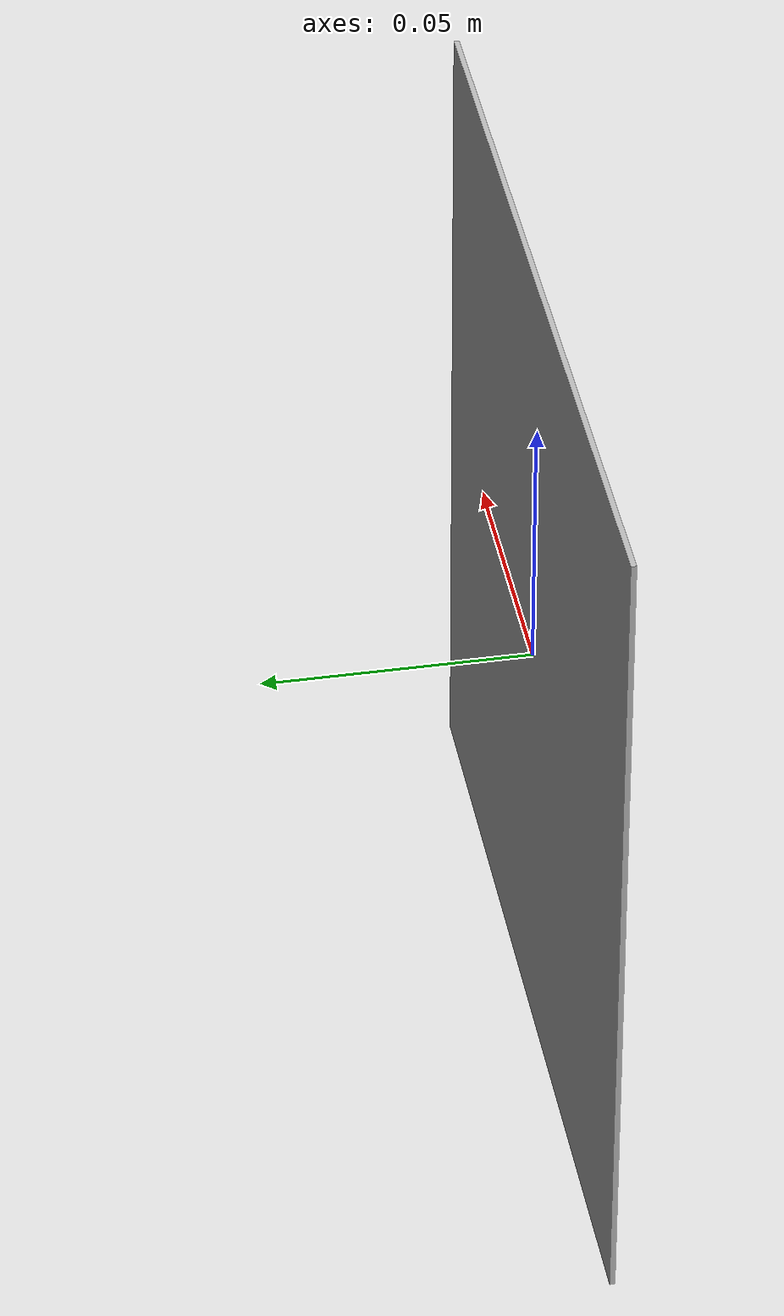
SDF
<?xml version="1.0" ?>
<sdf version="1.5">
  <model name="Tag1">
    <static>true</static>
    <link name="link">
      <pose>0 0 0 0 0 0</pose>
      <collision name="collision">
        <geometry>
          <box>
            <size>.1615 0.001 .1615</size>
          </box>
        </geometry>
      </collision>
      <visual name="visual">
        <cast_shadows>false</cast_shadows>
        <geometry>
          <box>
            <size>.1615 0.001 .1615</size>
          </box>
        </geometry>
        <material>
          <script>
            <uri>model://Tag1/materials/scripts</uri>
            <uri>model://Tag1/materials/textures</uri>
            <name>vrc/Tag1</name>
          </script>
        </material>
      </visual>
    </link>
  </model>
</sdf>
